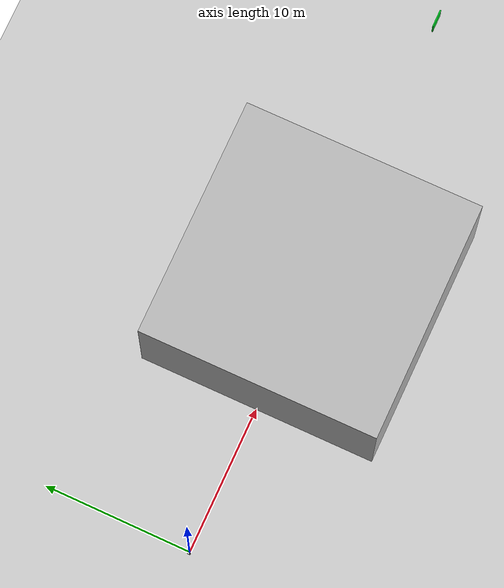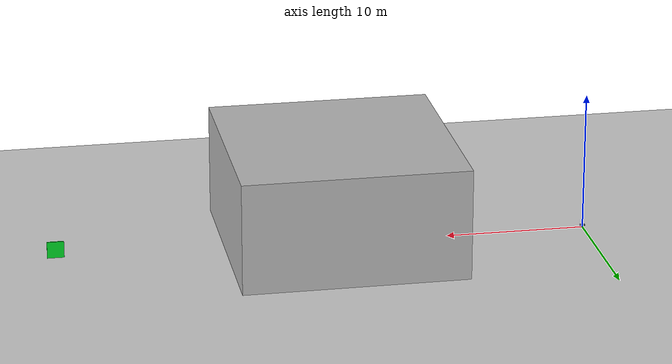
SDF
<?xml version="1.0"?>
<sdf version="1.10">
  <world name="jneo_gps_denied">
    <gravity>0 0 -9.80665</gravity>
    <scene>
      <ambient>0.34 0.36 0.38 1</ambient>
      <background>0.58 0.62 0.68 1</background>
      <shadows>true</shadows>
    </scene>
    <spherical_coordinates>
      <surface_model>EARTH_WGS84</surface_model>
      <latitude_deg>0</latitude_deg>
      <longitude_deg>0</longitude_deg>
      <elevation>0</elevation>
    </spherical_coordinates>
    <model name="terrain">
      <static>true</static>
      <link name="ground">
        <collision name="collision"><geometry><plane><normal>0 0 1</normal><size>180 180</size></plane></geometry></collision>
        <visual name="visual"><geometry><plane><normal>0 0 1</normal><size>180 180</size></plane></geometry></visual>
      </link>
    </model>
    <model name="gps_shadow_structure">
      <pose>18 0 4 0 0 0</pose>
      <static>true</static>
      <link name="structure">
        <collision name="collision"><geometry><box><size>16 16 8</size></box></geometry></collision>
        <visual name="visual"><geometry><box><size>16 16 8</size></box></geometry></visual>
      </link>
    </model>
    <include><name>uav_1</name><pose>0 0 0.15 0 0 0</pose><uri>model://jneo-fpv-copter</uri></include>
    <include><name>target_1</name><pose>38 0 1.0 0 0 3.14159</pose><uri>model://virtual-observation-target</uri></include>
    <!-- Evaluator-only metadata: GPS quality is degraded in x=[12,28], y=[-10,10]. -->
  </world>
</sdf>

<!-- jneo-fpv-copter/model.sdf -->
<sdf version="1.10">
  <model name="jneo-fpv-copter">
    <pose>0 0 0.15 0 0 0</pose>
    <link name="base_link">
      <inertial>
        <mass>1.45</mass>
        <inertia>
          <ixx>0.029</ixx>
          <iyy>0.029</iyy>
          <izz>0.055</izz>
        </inertia>
      </inertial>
      <collision name="body_collision">
        <geometry>
          <box>
            <size>0.35 0.22 0.08</size>
          </box>
        </geometry>
      </collision>
      <visual name="body_visual">
        <geometry>
          <box>
            <size>0.35 0.22 0.08</size>
          </box>
        </geometry>
        <material>
          <ambient>0.05 0.08 0.10 1</ambient>
          <diffuse>0.05 0.08 0.10 1</diffuse>
        </material>
      </visual>
      <sensor name="fpv_camera" type="camera">
        <pose>0.22 0 0.03 0 0 0</pose>
        <camera>
          <horizontal_fov>1.22173</horizontal_fov>
          <image>
            <width>960</width>
            <height>540</height>
            <format>R8G8B8</format>
          </image>
          <clip>
            <near>0.05</near>
            <far>500</far>
          </clip>
        </camera>
        <always_on>true</always_on>
        <update_rate>30</update_rate>
        <topic>fpv/image</topic>
      </sensor>
      <sensor name="imu" type="imu">
        <always_on>true</always_on>
        <update_rate>200</update_rate>
        <topic>imu</topic>
      </sensor>
      <sensor name="range" type="gpu_lidar">
        <pose>0.18 0 -0.02 0 0 0</pose>
        <topic>range/scan</topic>
        <update_rate>15</update_rate>
        <lidar>
          <scan>
            <horizontal>
              <samples>64</samples>
              <min_angle>-0.6</min_angle>
              <max_angle>0.6</max_angle>
            </horizontal>
          </scan>
          <range>
            <min>0.2</min>
            <max>30.0</max>
          </range>
        </lidar>
      </sensor>
    </link>
    <plugin filename="ArduPilotPlugin" name="ardupilot_gazebo::ArduPilotPlugin">
      <fdm_addr>127.0.0.1</fdm_addr>
      <fdm_port_in>9002</fdm_port_in>
      <fdm_port_out>9003</fdm_port_out>
      <modelXYZToAirplaneXForwardZDown>0 0 0 3.141593 0 0</modelXYZToAirplaneXForwardZDown>
      <gazeboXYZToNED>0 0 0 3.141593 0 1.570796</gazeboXYZToNED>
    </plugin>
  </model>
</sdf>

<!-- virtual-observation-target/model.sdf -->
<sdf version="1.10">
  <model name="virtual-observation-target">
    <static>true</static>
    <link name="target_panel">
      <visual name="target_pattern">
        <geometry>
          <box>
            <size>1.2 0.08 1.2</size>
          </box>
        </geometry>
        <material>
          <ambient>0.0 0.85 0.15 1</ambient>
          <diffuse>0.0 0.85 0.15 1</diffuse>
          <specular>0.8 0.8 0.8 1</specular>
        </material>
      </visual>
      <collision name="target_collision">
        <geometry>
          <box>
            <size>1.2 0.08 1.2</size>
          </box>
        </geometry>
      </collision>
    </link>
  </model>
</sdf>
